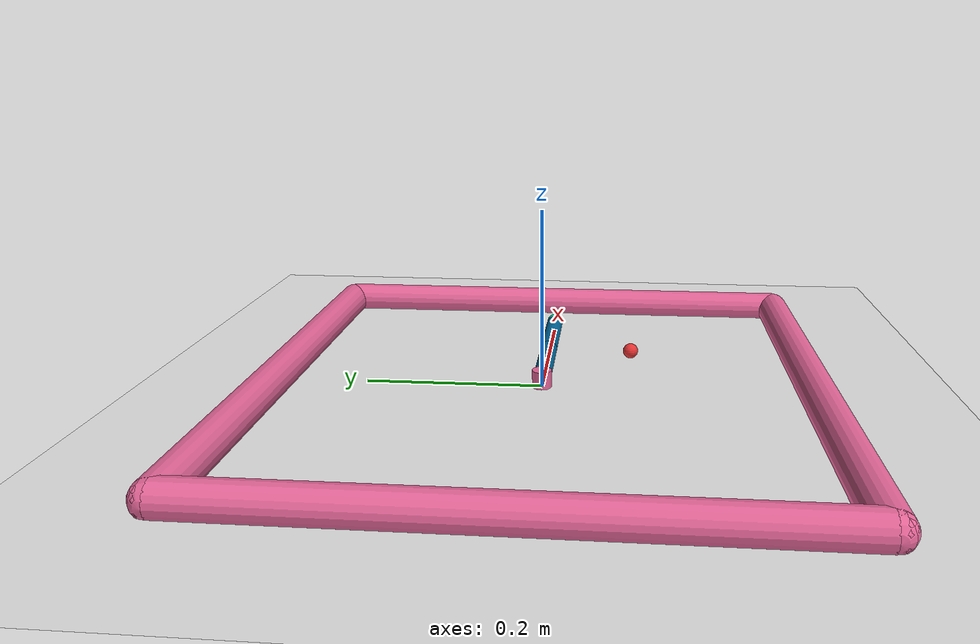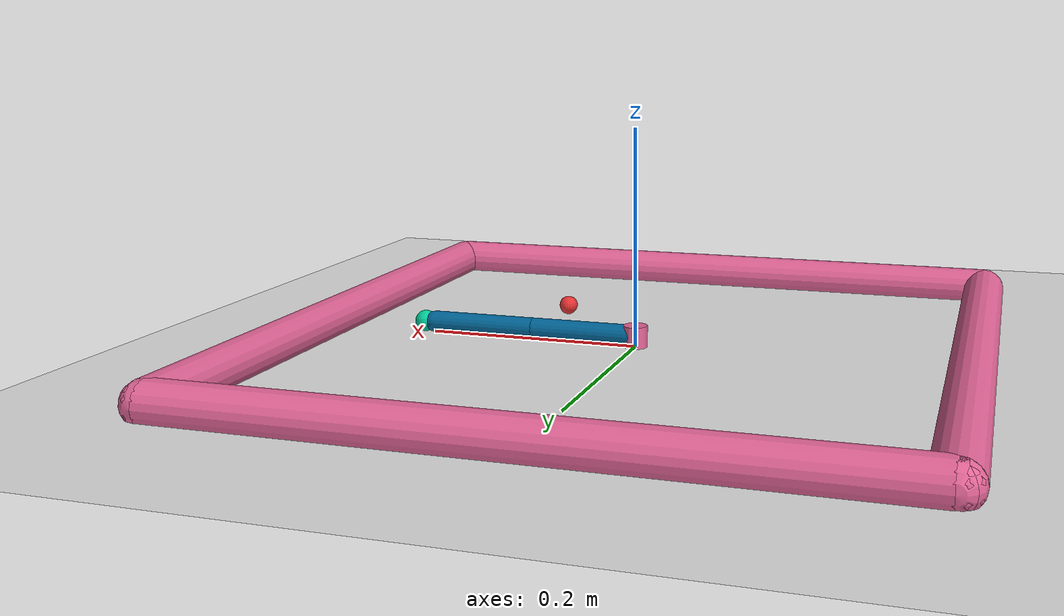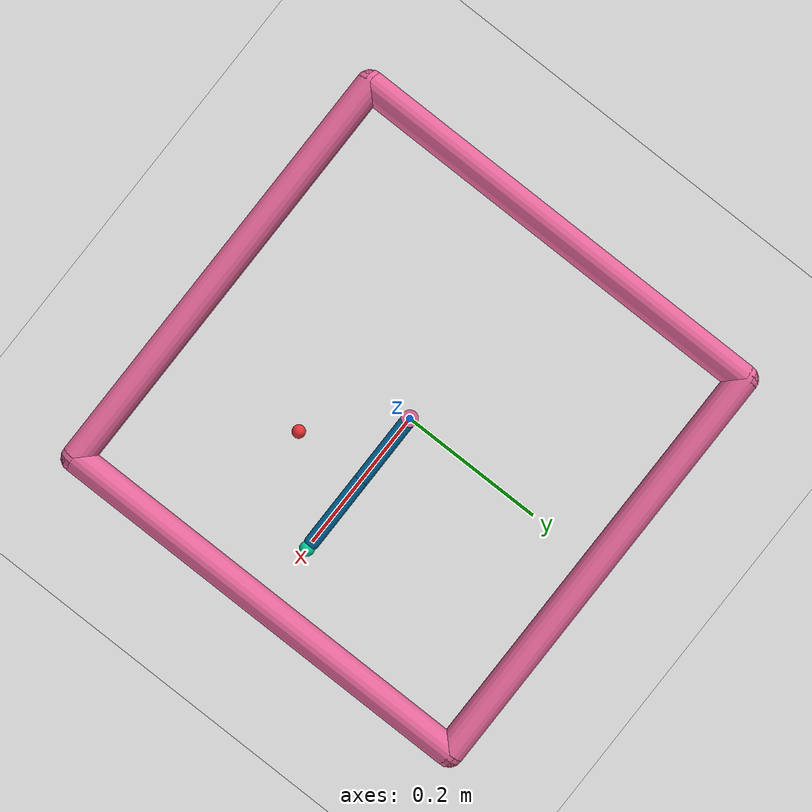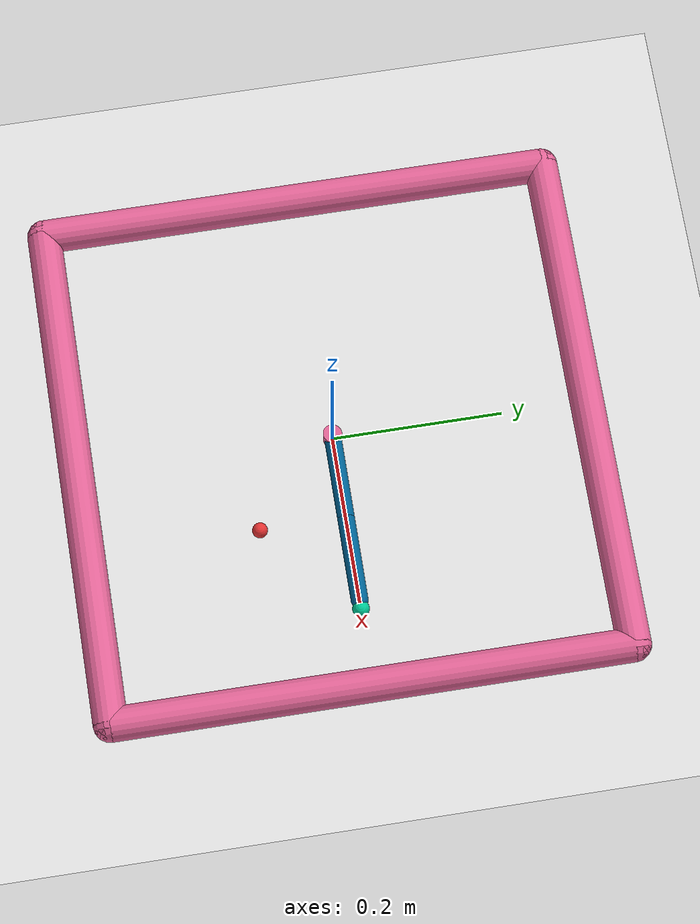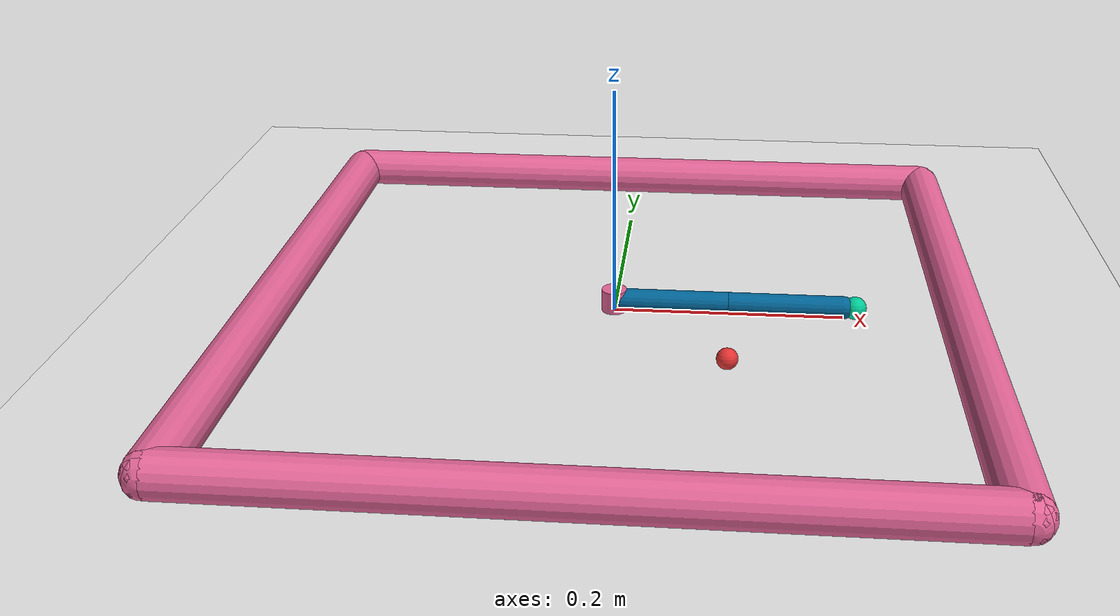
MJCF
<mujoco model="reacher">
	<compiler angle="radian" inertiafromgeom="true"/>
	<default>
		<joint armature="1" damping="1" limited="true"/>
		<geom contype="0" friction="1 0.1 0.1" rgba="0.7 0.7 0 1"/>
	</default>
	<option gravity="0 0 -9.81" integrator="RK4" timestep="0.01"/>
	<worldbody>
		<!-- Arena -->
		<geom conaffinity="0" contype="0" name="ground" pos="0 0 0" rgba="0.9 0.9 0.9 1" size="1 1 10" type="plane"/>
		<geom conaffinity="0" fromto="-.3 -.3 .01 .3 -.3 .01" name="sideS" rgba="0.9 0.4 0.6 1" size=".02" type="capsule"/>
		<geom conaffinity="0" fromto=" .3 -.3 .01 .3  .3 .01" name="sideE" rgba="0.9 0.4 0.6 1" size=".02" type="capsule"/>
		<geom conaffinity="0" fromto="-.3  .3 .01 .3  .3 .01" name="sideN" rgba="0.9 0.4 0.6 1" size=".02" type="capsule"/>
		<geom conaffinity="0" fromto="-.3 -.3 .01 -.3 .3 .01" name="sideW" rgba="0.9 0.4 0.6 1" size=".02" type="capsule"/>
		<!-- Arm -->
		<geom conaffinity="0" contype="0" fromto="0 0 0 0 0 0.02" name="root" rgba="0.9 0.4 0.6 1" size=".011" type="cylinder"/>
		<body name="body0" pos="0 0 .01">
			<geom fromto="0 0 0 0.1 0 0" name="link0" rgba="0.0 0.4 0.6 1" size=".01" type="capsule"/>
			<joint axis="0 0 1" limited="false" name="joint0" pos="0 0 0" type="hinge"/>
			<body name="body1" pos="0.1 0 0">
				<joint axis="0 0 1" limited="true" name="joint1" pos="0 0 0" range="-3.0 3.0" type="hinge"/>
				<geom fromto="0 0 0 0.1 0 0" name="link1" rgba="0.0 0.4 0.6 1" size=".01" type="capsule"/>
				<body name="fingertip" pos="0.11 0 0">
					<geom contype="0" name="fingertip" pos="0 0 0" rgba="0.0 0.8 0.6 1" size=".01" type="sphere"/>
				</body>
			</body>
		</body>
		<!-- Target -->
		<body name="true_target" pos=".1 -.1 .01">
			<joint armature="0" axis="1 0 0" damping="0" limited="true" name="target0_x" pos="0 0 0" range="-.27 .27" ref=".1" stiffness="0" type="slide"/>
			<joint armature="0" axis="0 1 0" damping="0" limited="true" name="target0_y" pos="0 0 0" range="-.27 .27" ref="-.1" stiffness="0" type="slide"/>
			<geom conaffinity="0" contype="0" name="target0" pos="0 0 0" rgba="0.9 0.2 0.2 1" size=".009" type="sphere"/>
		</body>
		<!-- Target -->
		<body name="target1" pos=".1 -.1 .01">
			<joint armature="0" axis="1 0 0" damping="0" limited="true" name="target1_x" pos="0 0 0" range="-.27 .27" ref=".1" stiffness="0" type="slide"/>
			<joint armature="0" axis="0 1 0" damping="0" limited="true" name="target1_y" pos="0 0 0" range="-.27 .27" ref="-.1" stiffness="0" type="slide"/>
			<geom conaffinity="0" contype="0" name="target1" pos="0 0 0" rgba="0.2 0.9 0.2 1" size=".009" type="sphere"/>
		</body>
		<!-- Target -->
		<body name="target2" pos=".1 -.1 .01">
			<joint armature="0" axis="1 0 0" damping="0" limited="true" name="target2_x" pos="0 0 0" range="-.27 .27" ref=".1" stiffness="0" type="slide"/>
			<joint armature="0" axis="0 1 0" damping="0" limited="true" name="target2_y" pos="0 0 0" range="-.27 .27" ref="-.1" stiffness="0" type="slide"/>
			<geom conaffinity="0" contype="0" name="target2" pos="0 0 0" rgba="0.2 0.9 0.2 1" size=".009" type="sphere"/>
		</body>
		<!-- Target -->
		<body name="target3" pos=".1 -.1 .01">
			<joint armature="0" axis="1 0 0" damping="0" limited="true" name="target3_x" pos="0 0 0" range="-.27 .27" ref=".1" stiffness="0" type="slide"/>
			<joint armature="0" axis="0 1 0" damping="0" limited="true" name="target3_y" pos="0 0 0" range="-.27 .27" ref="-.1" stiffness="0" type="slide"/>
			<geom conaffinity="0" contype="0" name="target3" pos="0 0 0" rgba="0.2 0.9 0.2 1" size=".009" type="sphere"/>
		</body>
		<!-- Target -->
		<body name="target4" pos=".1 -.1 .01">
			<joint armature="0" axis="1 0 0" damping="0" limited="true" name="target4_x" pos="0 0 0" range="-.27 .27" ref=".1" stiffness="0" type="slide"/>
			<joint armature="0" axis="0 1 0" damping="0" limited="true" name="target4_y" pos="0 0 0" range="-.27 .27" ref="-.1" stiffness="0" type="slide"/>
			<geom conaffinity="0" contype="0" name="target4" pos="0 0 0" rgba="0.2 0.9 0.2 1" size=".009" type="sphere"/>
		</body>
		<!-- Target -->
		<body name="checkpoint" pos=".1 -.1 .01">
			<joint armature="0" axis="1 0 0" damping="0" limited="true" name="target5_x" pos="0 0 0" range="-.27 .27" ref=".1" stiffness="0" type="slide"/>
			<joint armature="0" axis="0 1 0" damping="0" limited="true" name="target5_y" pos="0 0 0" range="-.27 .27" ref="-.1" stiffness="0" type="slide"/>
			<geom conaffinity="0" contype="0" name="target5" pos="0 0 0" rgba="0.9 0.2 0.2 1" size=".009" type="sphere"/>
		</body>
		<!-- Target -->
		<body name="target6" pos=".1 -.1 .01">
			<joint armature="0" axis="1 0 0" damping="0" limited="true" name="target6_x" pos="0 0 0" range="-.27 .27" ref=".1" stiffness="0" type="slide"/>
			<joint armature="0" axis="0 1 0" damping="0" limited="true" name="target6_y" pos="0 0 0" range="-.27 .27" ref="-.1" stiffness="0" type="slide"/>
			<geom conaffinity="0" contype="0" name="target6" pos="0 0 0" rgba="0.2 0.9 0.2 1" size=".009" type="sphere"/>
		</body>
	</worldbody>
	<actuator>
		<motor ctrllimited="true" ctrlrange="-1.0 1.0" gear="200.0" joint="joint0"/>
		<motor ctrllimited="true" ctrlrange="-1.0 1.0" gear="200.0" joint="joint1"/>
	</actuator>
</mujoco>
